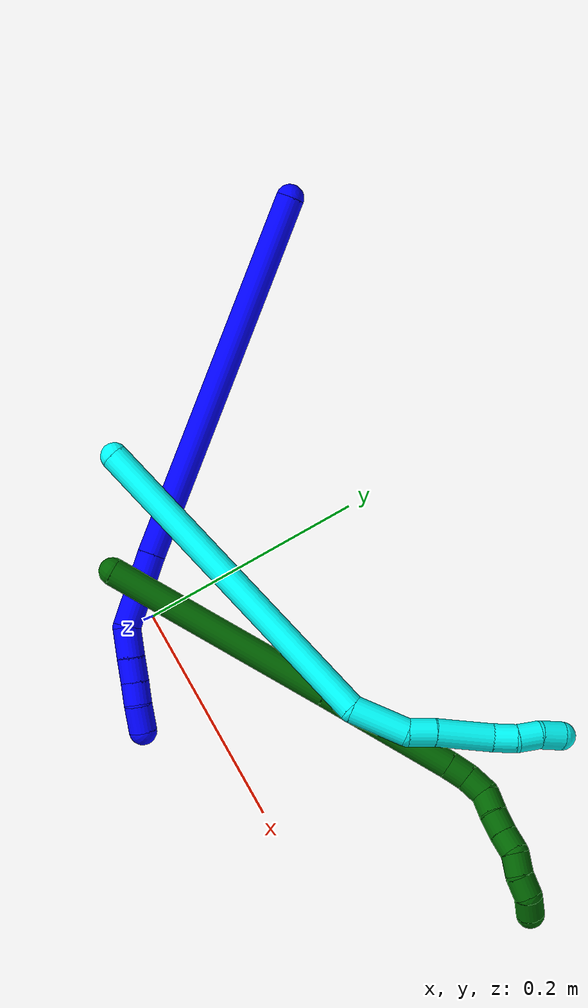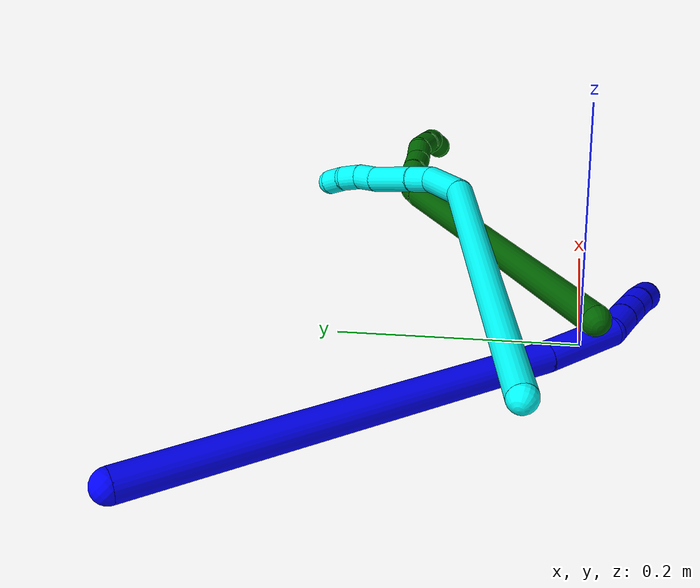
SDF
<sdf version="1.7">
 <world name="default">
  <model name="photoneo_s_sensor">
   <static>1</static>
   <pose>0 0 2 1.57079 1.57079 3.14159</pose>
   <link name="link">
    <inertial><mass>0.1</mass></inertial>
    <sensor name="sensor" type="depth">
     <update_rate>30</update_rate>
     <camera>
      <horizontal_fov>1.22</horizontal_fov>
      <image><width>1920</width><height>1200</height><format>B8G8R8</format></image>
      <clip><near>0.1</near><far>4</far></clip>
      <depth_camera><output>points</output></depth_camera>
     </camera>
     <plugin name="camera_plugin" filename="libgazebo_ros_depth_camera.so">
      <baseline>0.2</baseline>
      <alwaysOn>1</alwaysOn>
      <updateRate>0.0</updateRate>
      <cameraName>camera_ir</cameraName>
      <imageTopicName>/camera/color/image_raw</imageTopicName>
      <cameraInfoTopicName>/camera/color/camera_info</cameraInfoTopicName>
      <depthImageTopicName>/camera/depth/image_raw</depthImageTopicName>
      <depthImageCameraInfoTopicName>/camera/depth/camera_info</depthImageCameraInfoTopicName>
      <pointCloudTopicName>/camera/depth/points</pointCloudTopicName>
      <frameName>fr_optical</frameName>
      <pointCloudCutoff>0.1</pointCloudCutoff>
      <pointCloudCutoffMax>2.0</pointCloudCutoffMax>
      <distortionK1>0</distortionK1>
      <distortionK2>0</distortionK2>
      <distortionK3>0</distortionK3>
      <distortionT1>0</distortionT1>
      <distortionT2>0</distortionT2>
      <CxPrime>0</CxPrime>
      <Cx>0</Cx>
      <Cy>0</Cy>
      <focalLength>0</focalLength>
      <hackBaseline>0</hackBaseline>
     </plugin>
    </sensor>
   </link>
  </model>
  <model name="bin">
   <static>1</static>
   <link name="bottom">
    <collision name="collision-bottom">
     <pose>0 0 -0.01 0 -0 0</pose>
     <geometry><box><size>0.8 0.6 0.02</size></box></geometry>
     <surface>
      <friction><ode><mu>100</mu><mu2>100</mu2></ode></friction>
      <contact><collide_bitmask>65535</collide_bitmask></contact>
     </surface>
    </collision>
   </link>
   <link name="west_wall">
    <collision name="collision-west_wall">
     <pose>-0.41 0 0.1 0 -0 0</pose>
     <geometry><box><size>0.02 0.6 0.2</size></box></geometry>
     <surface>
      <friction><ode><mu>100</mu><mu2>100</mu2></ode></friction>
      <contact><collide_bitmask>65535</collide_bitmask></contact>
     </surface>
    </collision>
   </link>
   <link name="east_wall">
    <collision name="collision-east_wall">
     <pose>0.41 0 0.1 0 -0 0</pose>
     <geometry><box><size>0.02 0.6 0.2</size></box></geometry>
     <surface>
      <friction><ode><mu>100</mu><mu2>100</mu2></ode></friction>
      <contact><collide_bitmask>65535</collide_bitmask></contact>
     </surface>
    </collision>
   </link>
   <link name="south_wall">
    <collision name="collision-south_wall">
     <pose>0 -0.31 0.1 0 -0 0</pose>
     <geometry><box><size>0.8 0.02 0.2</size></box></geometry>
     <surface>
      <friction><ode><mu>100</mu><mu2>100</mu2></ode></friction>
      <contact><collide_bitmask>65535</collide_bitmask></contact>
     </surface>
    </collision>
   </link>
   <link name="north_wall">
    <collision name="collision-north_wall">
     <pose>0 0.31 0.1 0 -0 0</pose>
     <geometry><box><size>0.8 0.02 0.2</size></box></geometry>
     <surface>
      <friction><ode><mu>100</mu><mu2>100</mu2></ode></friction>
      <contact><collide_bitmask>65535</collide_bitmask></contact>
     </surface>
    </collision>
   </link>
  </model>
  <model name="1">
   <static>0</static>
   <link name="1">
    <collision name="collision-cylinder-e_1_1_4">
     <pose>0.114088 -0.093492 -0.082958 2.29657 0.739822 1.42338</pose>
     <geometry><cylinder><radius>0.0125</radius><length>0.33846</length></cylinder></geometry>
     <surface>
      <friction><ode><mu>1.16</mu><mu2>1.16</mu2><slip1>0</slip1><slip2>0</slip2></ode></friction>
      <contact><ode><kp>1e+06</kp><kd>1</kd><max_vel>0</max_vel><min_depth>0.001</min_depth></ode></contact>
     </surface>
    </collision>
    <visual name="visual-cylinder-e_1_1_4">
     <pose>0.114088 -0.093492 -0.082958 2.29657 0.739822 1.42338</pose>
     <geometry><cylinder><radius>0.0125</radius><length>0.33846</length></cylinder></geometry>
     <material><ambient>0 0 1 1</ambient></material>
    </visual>
    <collision name="collision-cylinder-e_2_4_5">
     <pose>0.252128 -0.206645 -0.180238 2.20036 0.777717 1.356</pose>
     <geometry><cylinder><radius>0.0125</radius><length>0.068276</length></cylinder></geometry>
     <surface>
      <friction><ode><mu>1.16</mu><mu2>1.16</mu2><slip1>0</slip1><slip2>0</slip2></ode></friction>
      <contact><ode><kp>1e+06</kp><kd>1</kd><max_vel>0</max_vel><min_depth>0.001</min_depth></ode></contact>
     </surface>
    </collision>
    <visual name="visual-cylinder-e_2_4_5">
     <pose>0.252128 -0.206645 -0.180238 2.20036 0.777717 1.356</pose>
     <geometry><cylinder><radius>0.0125</radius><length>0.068276</length></cylinder></geometry>
     <material><ambient>0 0 1 1</ambient></material>
    </visual>
    <collision name="collision-cylinder-e_3_5_6">
     <pose>0.288882 -0.230069 -0.196656 2.07895 1.24618 1.77052</pose>
     <geometry><cylinder><radius>0.0125</radius><length>0.027013</length></cylinder></geometry>
     <surface>
      <friction><ode><mu>1.16</mu><mu2>1.16</mu2><slip1>0</slip1><slip2>0</slip2></ode></friction>
      <contact><ode><kp>1e+06</kp><kd>1</kd><max_vel>0</max_vel><min_depth>0.001</min_depth></ode></contact>
     </surface>
    </collision>
    <visual name="visual-cylinder-e_3_5_6">
     <pose>0.288882 -0.230069 -0.196656 2.07895 1.24618 1.77052</pose>
     <geometry><cylinder><radius>0.0125</radius><length>0.027013</length></cylinder></geometry>
     <material><ambient>0 0 1 1</ambient></material>
    </visual>
    <collision name="collision-cylinder-e_4_6_7">
     <pose>0.312041 -0.2364 -0.200769 2.23661 1.26547 1.97078</pose>
     <geometry><cylinder><radius>0.0125</radius><length>0.021721</length></cylinder></geometry>
     <surface>
      <friction><ode><mu>1.16</mu><mu2>1.16</mu2><slip1>0</slip1><slip2>0</slip2></ode></friction>
      <contact><ode><kp>1e+06</kp><kd>1</kd><max_vel>0</max_vel><min_depth>0.001</min_depth></ode></contact>
     </surface>
    </collision>
    <visual name="visual-cylinder-e_4_6_7">
     <pose>0.312041 -0.2364 -0.200769 2.23661 1.26547 1.97078</pose>
     <geometry><cylinder><radius>0.0125</radius><length>0.021721</length></cylinder></geometry>
     <material><ambient>0 0 1 1</ambient></material>
    </visual>
    <collision name="collision-cylinder-e_5_7_8">
     <pose>0.331968 -0.24158 -0.204646 2.18963 1.24735 1.89814</pose>
     <geometry><cylinder><radius>0.0125</radius><length>0.020184</length></cylinder></geometry>
     <surface>
      <friction><ode><mu>1.16</mu><mu2>1.16</mu2><slip1>0</slip1><slip2>0</slip2></ode></friction>
      <contact><ode><kp>1e+06</kp><kd>1</kd><max_vel>0</max_vel><min_depth>0.001</min_depth></ode></contact>
     </surface>
    </collision>
    <visual name="visual-cylinder-e_5_7_8">
     <pose>0.331968 -0.24158 -0.204646 2.18963 1.24735 1.89814</pose>
     <geometry><cylinder><radius>0.0125</radius><length>0.020184</length></cylinder></geometry>
     <material><ambient>0 0 1 1</ambient></material>
    </visual>
    <collision name="collision-cylinder-e_6_8_2">
     <pose>0.353159 -0.245519 -0.209875 2.76654 1.2688 2.63686</pose>
     <geometry><cylinder><radius>0.0125</radius><length>0.024346</length></cylinder></geometry>
     <surface>
      <friction><ode><mu>1.16</mu><mu2>1.16</mu2><slip1>0</slip1><slip2>0</slip2></ode></friction>
      <contact><ode><kp>1e+06</kp><kd>1</kd><max_vel>0</max_vel><min_depth>0.001</min_depth></ode></contact>
     </surface>
    </collision>
    <visual name="visual-cylinder-e_6_8_2">
     <pose>0.353159 -0.245519 -0.209875 2.76654 1.2688 2.63686</pose>
     <geometry><cylinder><radius>0.0125</radius><length>0.024346</length></cylinder></geometry>
     <material><ambient>0 0 1 1</ambient></material>
    </visual>
    <collision name="collision-sphere-2">
     <pose>0.364781 -0.246846 -0.213244 0 -0 0</pose>
     <geometry><sphere><radius>0.0125</radius></sphere></geometry>
     <surface>
      <friction><ode><mu>1.16</mu><mu2>1.16</mu2><slip1>0</slip1><slip2>0</slip2></ode></friction>
      <contact><ode><kp>1e+06</kp><kd>1</kd><max_vel>0</max_vel><min_depth>0.001</min_depth></ode></contact>
     </surface>
    </collision>
    <visual name="visual-sphere-2">
     <pose>0.364781 -0.246846 -0.213244 0 -0 0</pose>
     <geometry><sphere><radius>0.0125</radius></sphere></geometry>
     <material><ambient>0 0 1 1</ambient></material>
    </visual>
    <collision name="collision-sphere-4">
     <pose>0.228175 -0.186984 -0.165916 0 -0 0</pose>
     <geometry><sphere><radius>0.0125</radius></sphere></geometry>
     <surface>
      <friction><ode><mu>1.16</mu><mu2>1.16</mu2><slip1>0</slip1><slip2>0</slip2></ode></friction>
      <contact><ode><kp>1e+06</kp><kd>1</kd><max_vel>0</max_vel><min_depth>0.001</min_depth></ode></contact>
     </surface>
    </collision>
    <visual name="visual-sphere-4">
     <pose>0.228175 -0.186984 -0.165916 0 -0 0</pose>
     <geometry><sphere><radius>0.0125</radius></sphere></geometry>
     <material><ambient>0 0 1 1</ambient></material>
    </visual>
    <collision name="collision-sphere-1">
     <geometry><sphere><radius>0.0125</radius></sphere></geometry>
     <surface>
      <friction><ode><mu>1.16</mu><mu2>1.16</mu2><slip1>0</slip1><slip2>0</slip2></ode></friction>
      <contact><ode><kp>1e+06</kp><kd>1</kd><max_vel>0</max_vel><min_depth>0.001</min_depth></ode></contact>
     </surface>
    </collision>
    <visual name="visual-sphere-1">
     <geometry><sphere><radius>0.0125</radius></sphere></geometry>
     <material><ambient>0 0 1 1</ambient></material>
    </visual>
    <collision name="collision-sphere-8">
     <pose>0.341537 -0.244193 -0.206507 0 -0 0</pose>
     <geometry><sphere><radius>0.0125</radius></sphere></geometry>
     <surface>
      <friction><ode><mu>1.16</mu><mu2>1.16</mu2><slip1>0</slip1><slip2>0</slip2></ode></friction>
      <contact><ode><kp>1e+06</kp><kd>1</kd><max_vel>0</max_vel><min_depth>0.001</min_depth></ode></contact>
     </surface>
    </collision>
    <visual name="visual-sphere-8">
     <pose>0.341537 -0.244193 -0.206507 0 -0 0</pose>
     <geometry><sphere><radius>0.0125</radius></sphere></geometry>
     <material><ambient>0 0 1 1</ambient></material>
    </visual>
    <collision name="collision-sphere-5">
     <pose>0.276082 -0.226306 -0.19456 0 -0 0</pose>
     <geometry><sphere><radius>0.0125</radius></sphere></geometry>
     <surface>
      <friction><ode><mu>1.16</mu><mu2>1.16</mu2><slip1>0</slip1><slip2>0</slip2></ode></friction>
      <contact><ode><kp>1e+06</kp><kd>1</kd><max_vel>0</max_vel><min_depth>0.001</min_depth></ode></contact>
     </surface>
    </collision>
    <visual name="visual-sphere-5">
     <pose>0.276082 -0.226306 -0.19456 0 -0 0</pose>
     <geometry><sphere><radius>0.0125</radius></sphere></geometry>
     <material><ambient>0 0 1 1</ambient></material>
    </visual>
    <collision name="collision-sphere-6">
     <pose>0.301683 -0.233833 -0.198752 0 -0 0</pose>
     <geometry><sphere><radius>0.0125</radius></sphere></geometry>
     <surface>
      <friction><ode><mu>1.16</mu><mu2>1.16</mu2><slip1>0</slip1><slip2>0</slip2></ode></friction>
      <contact><ode><kp>1e+06</kp><kd>1</kd><max_vel>0</max_vel><min_depth>0.001</min_depth></ode></contact>
     </surface>
    </collision>
    <visual name="visual-sphere-6">
     <pose>0.301683 -0.233833 -0.198752 0 -0 0</pose>
     <geometry><sphere><radius>0.0125</radius></sphere></geometry>
     <material><ambient>0 0 1 1</ambient></material>
    </visual>
    <collision name="collision-sphere-7">
     <pose>0.3224 -0.238968 -0.202785 0 -0 0</pose>
     <geometry><sphere><radius>0.0125</radius></sphere></geometry>
     <surface>
      <friction><ode><mu>1.16</mu><mu2>1.16</mu2><slip1>0</slip1><slip2>0</slip2></ode></friction>
      <contact><ode><kp>1e+06</kp><kd>1</kd><max_vel>0</max_vel><min_depth>0.001</min_depth></ode></contact>
     </surface>
    </collision>
    <visual name="visual-sphere-7">
     <pose>0.3224 -0.238968 -0.202785 0 -0 0</pose>
     <geometry><sphere><radius>0.0125</radius></sphere></geometry>
     <material><ambient>0 0 1 1</ambient></material>
    </visual>
    <inertial>
     <pose>0.171416 -0.135911 -0.118595 0 -0 0</pose>
     <mass>0.5</mass>
     <inertia>
      <ixx>0.002776</ixx>
      <ixy>0</ixy>
      <ixz>0</ixz>
      <iyy>0.003695</iyy>
      <iyz>0</iyz>
      <izz>-0.000421</izz>
     </inertia>
    </inertial>
   </link>
   <pose>-0.263694 0.287398 0.011499 -0.784513 0.064266 -0.052105</pose>
  </model>
  <model name="3">
   <static>0</static>
   <link name="3">
    <collision name="collision-cylinder-e_1_1_4">
     <pose>0.04212 0.051383 0.139013 -0.354053 0.276902 -0.049846</pose>
     <geometry><cylinder><radius>0.0125</radius><length>0.308149</length></cylinder></geometry>
     <surface>
      <friction><ode><mu>1.16</mu><mu2>1.16</mu2><slip1>0</slip1><slip2>0</slip2></ode></friction>
      <contact><ode><kp>1e+06</kp><kd>1</kd><max_vel>0</max_vel><min_depth>0.001</min_depth></ode></contact>
     </surface>
    </collision>
    <visual name="visual-cylinder-e_1_1_4">
     <pose>0.04212 0.051383 0.139013 -0.354053 0.276902 -0.049846</pose>
     <geometry><cylinder><radius>0.0125</radius><length>0.308149</length></cylinder></geometry>
     <material><ambient>0.003922 1 0.996078 1</ambient></material>
    </visual>
    <collision name="collision-cylinder-e_2_4_5">
     <pose>0.095476 0.119567 0.294439 -0.797081 0.446173 -0.190474</pose>
     <geometry><cylinder><radius>0.0125</radius><length>0.052073</length></cylinder></geometry>
     <surface>
      <friction><ode><mu>1.16</mu><mu2>1.16</mu2><slip1>0</slip1><slip2>0</slip2></ode></friction>
      <contact><ode><kp>1e+06</kp><kd>1</kd><max_vel>0</max_vel><min_depth>0.001</min_depth></ode></contact>
     </surface>
    </collision>
    <visual name="visual-cylinder-e_2_4_5">
     <pose>0.095476 0.119567 0.294439 -0.797081 0.446173 -0.190474</pose>
     <geometry><cylinder><radius>0.0125</radius><length>0.052073</length></cylinder></geometry>
     <material><ambient>0.003922 1 0.996078 1</ambient></material>
    </visual>
    <collision name="collision-cylinder-e_3_5_6">
     <pose>0.112523 0.146691 0.314008 -1.27408 0.493937 -0.368867</pose>
     <geometry><cylinder><radius>0.0125</radius><length>0.02452</length></cylinder></geometry>
     <surface>
      <friction><ode><mu>1.16</mu><mu2>1.16</mu2><slip1>0</slip1><slip2>0</slip2></ode></friction>
      <contact><ode><kp>1e+06</kp><kd>1</kd><max_vel>0</max_vel><min_depth>0.001</min_depth></ode></contact>
     </surface>
    </collision>
    <visual name="visual-cylinder-e_3_5_6">
     <pose>0.112523 0.146691 0.314008 -1.27408 0.493937 -0.368867</pose>
     <geometry><cylinder><radius>0.0125</radius><length>0.02452</length></cylinder></geometry>
     <material><ambient>0.003922 1 0.996078 1</ambient></material>
    </visual>
    <collision name="collision-cylinder-e_4_6_7">
     <pose>0.131991 0.177261 0.325444 -1.18259 0.558041 -0.380082</pose>
     <geometry><cylinder><radius>0.0125</radius><length>0.051574</length></cylinder></geometry>
     <surface>
      <friction><ode><mu>1.16</mu><mu2>1.16</mu2><slip1>0</slip1><slip2>0</slip2></ode></friction>
      <contact><ode><kp>1e+06</kp><kd>1</kd><max_vel>0</max_vel><min_depth>0.001</min_depth></ode></contact>
     </surface>
    </collision>
    <visual name="visual-cylinder-e_4_6_7">
     <pose>0.131991 0.177261 0.325444 -1.18259 0.558041 -0.380082</pose>
     <geometry><cylinder><radius>0.0125</radius><length>0.051574</length></cylinder></geometry>
     <material><ambient>0.003922 1 0.996078 1</ambient></material>
    </visual>
    <collision name="collision-cylinder-e_5_7_8">
     <pose>0.149909 0.206701 0.337307 -1.19912 0.407884 -0.280856</pose>
     <geometry><cylinder><radius>0.0125</radius><length>0.021496</length></cylinder></geometry>
     <surface>
      <friction><ode><mu>1.16</mu><mu2>1.16</mu2><slip1>0</slip1><slip2>0</slip2></ode></friction>
      <contact><ode><kp>1e+06</kp><kd>1</kd><max_vel>0</max_vel><min_depth>0.001</min_depth></ode></contact>
     </surface>
    </collision>
    <visual name="visual-cylinder-e_5_7_8">
     <pose>0.149909 0.206701 0.337307 -1.19912 0.407884 -0.280856</pose>
     <geometry><cylinder><radius>0.0125</radius><length>0.021496</length></cylinder></geometry>
     <material><ambient>0.003922 1 0.996078 1</ambient></material>
    </visual>
    <collision name="collision-cylinder-e_6_8_9">
     <pose>0.159177 0.224988 0.341814 -1.46964 0.500893 -0.454351</pose>
     <geometry><cylinder><radius>0.0125</radius><length>0.020843</length></cylinder></geometry>
     <surface>
      <friction><ode><mu>1.16</mu><mu2>1.16</mu2><slip1>0</slip1><slip2>0</slip2></ode></friction>
      <contact><ode><kp>1e+06</kp><kd>1</kd><max_vel>0</max_vel><min_depth>0.001</min_depth></ode></contact>
     </surface>
    </collision>
    <visual name="visual-cylinder-e_6_8_9">
     <pose>0.159177 0.224988 0.341814 -1.46964 0.500893 -0.454351</pose>
     <geometry><cylinder><radius>0.0125</radius><length>0.020843</length></cylinder></geometry>
     <material><ambient>0.003922 1 0.996078 1</ambient></material>
    </visual>
    <collision name="collision-cylinder-e_7_9_2">
     <pose>0.171126 0.241853 0.345041 -1.28249 0.708433 -0.538704</pose>
     <geometry><cylinder><radius>0.0125</radius><length>0.021346</length></cylinder></geometry>
     <surface>
      <friction><ode><mu>1.16</mu><mu2>1.16</mu2><slip1>0</slip1><slip2>0</slip2></ode></friction>
      <contact><ode><kp>1e+06</kp><kd>1</kd><max_vel>0</max_vel><min_depth>0.001</min_depth></ode></contact>
     </surface>
    </collision>
    <visual name="visual-cylinder-e_7_9_2">
     <pose>0.171126 0.241853 0.345041 -1.28249 0.708433 -0.538704</pose>
     <geometry><cylinder><radius>0.0125</radius><length>0.021346</length></cylinder></geometry>
     <material><ambient>0.003922 1 0.996078 1</ambient></material>
    </visual>
    <collision name="collision-sphere-2">
     <pose>0.17807 0.249623 0.347345 0 -0 0</pose>
     <geometry><sphere><radius>0.0125</radius></sphere></geometry>
     <surface>
      <friction><ode><mu>1.16</mu><mu2>1.16</mu2><slip1>0</slip1><slip2>0</slip2></ode></friction>
      <contact><ode><kp>1e+06</kp><kd>1</kd><max_vel>0</max_vel><min_depth>0.001</min_depth></ode></contact>
     </surface>
    </collision>
    <visual name="visual-sphere-2">
     <pose>0.17807 0.249623 0.347345 0 -0 0</pose>
     <geometry><sphere><radius>0.0125</radius></sphere></geometry>
     <material><ambient>0.003922 1 0.996078 1</ambient></material>
    </visual>
    <collision name="collision-sphere-9">
     <pose>0.164181 0.234083 0.342737 0 -0 0</pose>
     <geometry><sphere><radius>0.0125</radius></sphere></geometry>
     <surface>
      <friction><ode><mu>1.16</mu><mu2>1.16</mu2><slip1>0</slip1><slip2>0</slip2></ode></friction>
      <contact><ode><kp>1e+06</kp><kd>1</kd><max_vel>0</max_vel><min_depth>0.001</min_depth></ode></contact>
     </surface>
    </collision>
    <visual name="visual-sphere-9">
     <pose>0.164181 0.234083 0.342737 0 -0 0</pose>
     <geometry><sphere><radius>0.0125</radius></sphere></geometry>
     <material><ambient>0.003922 1 0.996078 1</ambient></material>
    </visual>
    <collision name="collision-sphere-4">
     <pose>0.084241 0.102766 0.278026 0 -0 0</pose>
     <geometry><sphere><radius>0.0125</radius></sphere></geometry>
     <surface>
      <friction><ode><mu>1.16</mu><mu2>1.16</mu2><slip1>0</slip1><slip2>0</slip2></ode></friction>
      <contact><ode><kp>1e+06</kp><kd>1</kd><max_vel>0</max_vel><min_depth>0.001</min_depth></ode></contact>
     </surface>
    </collision>
    <visual name="visual-sphere-4">
     <pose>0.084241 0.102766 0.278026 0 -0 0</pose>
     <geometry><sphere><radius>0.0125</radius></sphere></geometry>
     <material><ambient>0.003922 1 0.996078 1</ambient></material>
    </visual>
    <collision name="collision-sphere-1">
     <geometry><sphere><radius>0.0125</radius></sphere></geometry>
     <surface>
      <friction><ode><mu>1.16</mu><mu2>1.16</mu2><slip1>0</slip1><slip2>0</slip2></ode></friction>
      <contact><ode><kp>1e+06</kp><kd>1</kd><max_vel>0</max_vel><min_depth>0.001</min_depth></ode></contact>
     </surface>
    </collision>
    <visual name="visual-sphere-1">
     <geometry><sphere><radius>0.0125</radius></sphere></geometry>
     <material><ambient>0.003922 1 0.996078 1</ambient></material>
    </visual>
    <collision name="collision-sphere-8">
     <pose>0.154172 0.215893 0.34089 0 -0 0</pose>
     <geometry><sphere><radius>0.0125</radius></sphere></geometry>
     <surface>
      <friction><ode><mu>1.16</mu><mu2>1.16</mu2><slip1>0</slip1><slip2>0</slip2></ode></friction>
      <contact><ode><kp>1e+06</kp><kd>1</kd><max_vel>0</max_vel><min_depth>0.001</min_depth></ode></contact>
     </surface>
    </collision>
    <visual name="visual-sphere-8">
     <pose>0.154172 0.215893 0.34089 0 -0 0</pose>
     <geometry><sphere><radius>0.0125</radius></sphere></geometry>
     <material><ambient>0.003922 1 0.996078 1</ambient></material>
    </visual>
    <collision name="collision-sphere-5">
     <pose>0.106711 0.136368 0.310851 0 -0 0</pose>
     <geometry><sphere><radius>0.0125</radius></sphere></geometry>
     <surface>
      <friction><ode><mu>1.16</mu><mu2>1.16</mu2><slip1>0</slip1><slip2>0</slip2></ode></friction>
      <contact><ode><kp>1e+06</kp><kd>1</kd><max_vel>0</max_vel><min_depth>0.001</min_depth></ode></contact>
     </surface>
    </collision>
    <visual name="visual-sphere-5">
     <pose>0.106711 0.136368 0.310851 0 -0 0</pose>
     <geometry><sphere><radius>0.0125</radius></sphere></geometry>
     <material><ambient>0.003922 1 0.996078 1</ambient></material>
    </visual>
    <collision name="collision-sphere-6">
     <pose>0.118336 0.157014 0.317164 0 -0 0</pose>
     <geometry><sphere><radius>0.0125</radius></sphere></geometry>
     <surface>
      <friction><ode><mu>1.16</mu><mu2>1.16</mu2><slip1>0</slip1><slip2>0</slip2></ode></friction>
      <contact><ode><kp>1e+06</kp><kd>1</kd><max_vel>0</max_vel><min_depth>0.001</min_depth></ode></contact>
     </surface>
    </collision>
    <visual name="visual-sphere-6">
     <pose>0.118336 0.157014 0.317164 0 -0 0</pose>
     <geometry><sphere><radius>0.0125</radius></sphere></geometry>
     <material><ambient>0.003922 1 0.996078 1</ambient></material>
    </visual>
    <collision name="collision-sphere-7">
     <pose>0.145645 0.197508 0.333724 0 -0 0</pose>
     <geometry><sphere><radius>0.0125</radius></sphere></geometry>
     <surface>
      <friction><ode><mu>1.16</mu><mu2>1.16</mu2><slip1>0</slip1><slip2>0</slip2></ode></friction>
      <contact><ode><kp>1e+06</kp><kd>1</kd><max_vel>0</max_vel><min_depth>0.001</min_depth></ode></contact>
     </surface>
    </collision>
    <visual name="visual-sphere-7">
     <pose>0.145645 0.197508 0.333724 0 -0 0</pose>
     <geometry><sphere><radius>0.0125</radius></sphere></geometry>
     <material><ambient>0.003922 1 0.996078 1</ambient></material>
    </visual>
    <inertial>
     <pose>0.075421 0.098188 0.208786 0 -0 0</pose>
     <mass>0.5</mass>
     <inertia>
      <ixx>0.00227</ixx>
      <ixy>0</ixy>
      <ixz>0</ixz>
      <iyy>0.002221</iyy>
      <iyz>0</iyz>
      <izz>-0.001502</izz>
     </inertia>
    </inertial>
   </link>
   <pose>-0.139433 0.040398 0.024068 0.456976 1.11862 0.348157</pose>
  </model>
  <model name="6">
   <static>0</static>
   <link name="6">
    <collision name="collision-cylinder-e_1_1_4">
     <pose>0.02507 0.012012 0.103257 -0.115809 0.236648 -0.013782</pose>
     <geometry><cylinder><radius>0.0125</radius><length>0.213867</length></cylinder></geometry>
     <surface>
      <friction><ode><mu>1.16</mu><mu2>1.16</mu2><slip1>0</slip1><slip2>0</slip2></ode></friction>
      <contact><ode><kp>1e+06</kp><kd>1</kd><max_vel>0</max_vel><min_depth>0.001</min_depth></ode></contact>
     </surface>
    </collision>
    <visual name="visual-cylinder-e_1_1_4">
     <pose>0.02507 0.012012 0.103257 -0.115809 0.236648 -0.013782</pose>
     <geometry><cylinder><radius>0.0125</radius><length>0.213867</length></cylinder></geometry>
     <material><ambient>0 0.392157 0.003922 1</ambient></material>
    </visual>
    <collision name="collision-cylinder-e_2_4_5">
     <pose>0.066032 0.030551 0.266769 -0.107905 0.256442 -0.013925</pose>
     <geometry><cylinder><radius>0.0125</radius><length>0.125313</length></cylinder></geometry>
     <surface>
      <friction><ode><mu>1.16</mu><mu2>1.16</mu2><slip1>0</slip1><slip2>0</slip2></ode></friction>
      <contact><ode><kp>1e+06</kp><kd>1</kd><max_vel>0</max_vel><min_depth>0.001</min_depth></ode></contact>
     </surface>
    </collision>
    <visual name="visual-cylinder-e_2_4_5">
     <pose>0.066032 0.030551 0.266769 -0.107905 0.256442 -0.013925</pose>
     <geometry><cylinder><radius>0.0125</radius><length>0.125313</length></cylinder></geometry>
     <material><ambient>0 0.392157 0.003922 1</ambient></material>
    </visual>
    <collision name="collision-cylinder-e_3_5_6">
     <pose>0.084044 0.03761 0.336793 -0.054395 0.213307 -0.005825</pose>
     <geometry><cylinder><radius>0.0125</radius><length>0.020022</length></cylinder></geometry>
     <surface>
      <friction><ode><mu>1.16</mu><mu2>1.16</mu2><slip1>0</slip1><slip2>0</slip2></ode></friction>
      <contact><ode><kp>1e+06</kp><kd>1</kd><max_vel>0</max_vel><min_depth>0.001</min_depth></ode></contact>
     </surface>
    </collision>
    <visual name="visual-cylinder-e_3_5_6">
     <pose>0.084044 0.03761 0.336793 -0.054395 0.213307 -0.005825</pose>
     <geometry><cylinder><radius>0.0125</radius><length>0.020022</length></cylinder></geometry>
     <material><ambient>0 0.392157 0.003922 1</ambient></material>
    </visual>
    <collision name="collision-cylinder-e_4_6_7">
     <pose>0.086829 0.037117 0.356861 0.099168 0.064293 0.003192</pose>
     <geometry><cylinder><radius>0.0125</radius><length>0.020741</length></cylinder></geometry>
     <surface>
      <friction><ode><mu>1.16</mu><mu2>1.16</mu2><slip1>0</slip1><slip2>0</slip2></ode></friction>
      <contact><ode><kp>1e+06</kp><kd>1</kd><max_vel>0</max_vel><min_depth>0.001</min_depth></ode></contact>
     </surface>
    </collision>
    <visual name="visual-cylinder-e_4_6_7">
     <pose>0.086829 0.037117 0.356861 0.099168 0.064293 0.003192</pose>
     <geometry><cylinder><radius>0.0125</radius><length>0.020741</length></cylinder></geometry>
     <material><ambient>0 0.392157 0.003922 1</ambient></material>
    </visual>
    <collision name="collision-cylinder-e_5_7_8">
     <pose>0.085644 0.031315 0.375757 0.507146 -0.18611 -0.048361</pose>
     <geometry><cylinder><radius>0.0125</radius><length>0.020018</length></cylinder></geometry>
     <surface>
      <friction><ode><mu>1.16</mu><mu2>1.16</mu2><slip1>0</slip1><slip2>0</slip2></ode></friction>
      <contact><ode><kp>1e+06</kp><kd>1</kd><max_vel>0</max_vel><min_depth>0.001</min_depth></ode></contact>
     </surface>
    </collision>
    <visual name="visual-cylinder-e_5_7_8">
     <pose>0.085644 0.031315 0.375757 0.507146 -0.18611 -0.048361</pose>
     <geometry><cylinder><radius>0.0125</radius><length>0.020018</length></cylinder></geometry>
     <material><ambient>0 0.392157 0.003922 1</ambient></material>
    </visual>
    <collision name="collision-cylinder-e_6_8_9">
     <pose>0.083128 0.022182 0.39334 0.451448 -0.066401 -0.015253</pose>
     <geometry><cylinder><radius>0.0125</radius><length>0.020016</length></cylinder></geometry>
     <surface>
      <friction><ode><mu>1.16</mu><mu2>1.16</mu2><slip1>0</slip1><slip2>0</slip2></ode></friction>
      <contact><ode><kp>1e+06</kp><kd>1</kd><max_vel>0</max_vel><min_depth>0.001</min_depth></ode></contact>
     </surface>
    </collision>
    <visual name="visual-cylinder-e_6_8_9">
     <pose>0.083128 0.022182 0.39334 0.451448 -0.066401 -0.015253</pose>
     <geometry><cylinder><radius>0.0125</radius><length>0.020016</length></cylinder></geometry>
     <material><ambient>0 0.392157 0.003922 1</ambient></material>
    </visual>
    <collision name="collision-cylinder-e_7_9_10">
     <pose>0.080492 0.014391 0.411521 0.357391 -0.198179 -0.035909</pose>
     <geometry><cylinder><radius>0.0125</radius><length>0.020022</length></cylinder></geometry>
     <surface>
      <friction><ode><mu>1.16</mu><mu2>1.16</mu2><slip1>0</slip1><slip2>0</slip2></ode></friction>
      <contact><ode><kp>1e+06</kp><kd>1</kd><max_vel>0</max_vel><min_depth>0.001</min_depth></ode></contact>
     </surface>
    </collision>
    <visual name="visual-cylinder-e_7_9_10">
     <pose>0.080492 0.014391 0.411521 0.357391 -0.198179 -0.035909</pose>
     <geometry><cylinder><radius>0.0125</radius><length>0.020022</length></cylinder></geometry>
     <material><ambient>0 0.392157 0.003922 1</ambient></material>
    </visual>
    <collision name="collision-cylinder-e_8_10_11">
     <pose>0.079519 0.004275 0.428089 0.736289 0.099957 0.038584</pose>
     <geometry><cylinder><radius>0.0125</radius><length>0.020001</length></cylinder></geometry>
     <surface>
      <friction><ode><mu>1.16</mu><mu2>1.16</mu2><slip1>0</slip1><slip2>0</slip2></ode></friction>
      <contact><ode><kp>1e+06</kp><kd>1</kd><max_vel>0</max_vel><min_depth>0.001</min_depth></ode></contact>
     </surface>
    </collision>
    <visual name="visual-cylinder-e_8_10_11">
     <pose>0.079519 0.004275 0.428089 0.736289 0.099957 0.038584</pose>
     <geometry><cylinder><radius>0.0125</radius><length>0.020001</length></cylinder></geometry>
     <material><ambient>0 0.392157 0.003922 1</ambient></material>
    </visual>
    <collision name="collision-cylinder-e_9_11_12">
     <pose>0.083424 -0.007547 0.443533 0.567042 0.294911 0.086503</pose>
     <geometry><cylinder><radius>0.0125</radius><length>0.02</length></cylinder></geometry>
     <surface>
      <friction><ode><mu>1.16</mu><mu2>1.16</mu2><slip1>0</slip1><slip2>0</slip2></ode></friction>
      <contact><ode><kp>1e+06</kp><kd>1</kd><max_vel>0</max_vel><min_depth>0.001</min_depth></ode></contact>
     </surface>
    </collision>
    <visual name="visual-cylinder-e_9_11_12">
     <pose>0.083424 -0.007547 0.443533 0.567042 0.294911 0.086503</pose>
     <geometry><cylinder><radius>0.0125</radius><length>0.02</length></cylinder></geometry>
     <material><ambient>0 0.392157 0.003922 1</ambient></material>
    </visual>
    <collision name="collision-cylinder-e_10_12_2">
     <pose>0.092771 -0.018871 0.456105 0.941672 0.699792 0.367306</pose>
     <geometry><cylinder><radius>0.0125</radius><length>0.02</length></cylinder></geometry>
     <surface>
      <friction><ode><mu>1.16</mu><mu2>1.16</mu2><slip1>0</slip1><slip2>0</slip2></ode></friction>
      <contact><ode><kp>1e+06</kp><kd>1</kd><max_vel>0</max_vel><min_depth>0.001</min_depth></ode></contact>
     </surface>
    </collision>
    <visual name="visual-cylinder-e_10_12_2">
     <pose>0.092771 -0.018871 0.456105 0.941672 0.699792 0.367306</pose>
     <geometry><cylinder><radius>0.0125</radius><length>0.02</length></cylinder></geometry>
     <material><ambient>0 0.392157 0.003922 1</ambient></material>
    </visual>
    <collision name="collision-sphere-2">
     <pose>0.099212 -0.025057 0.460607 0 -0 0</pose>
     <geometry><sphere><radius>0.0125</radius></sphere></geometry>
     <surface>
      <friction><ode><mu>1.16</mu><mu2>1.16</mu2><slip1>0</slip1><slip2>0</slip2></ode></friction>
      <contact><ode><kp>1e+06</kp><kd>1</kd><max_vel>0</max_vel><min_depth>0.001</min_depth></ode></contact>
     </surface>
    </collision>
    <visual name="visual-sphere-2">
     <pose>0.099212 -0.025057 0.460607 0 -0 0</pose>
     <geometry><sphere><radius>0.0125</radius></sphere></geometry>
     <material><ambient>0 0.392157 0.003922 1</ambient></material>
    </visual>
    <collision name="collision-sphere-12">
     <pose>0.086331 -0.012686 0.451604 0 -0 0</pose>
     <geometry><sphere><radius>0.0125</radius></sphere></geometry>
     <surface>
      <friction><ode><mu>1.16</mu><mu2>1.16</mu2><slip1>0</slip1><slip2>0</slip2></ode></friction>
      <contact><ode><kp>1e+06</kp><kd>1</kd><max_vel>0</max_vel><min_depth>0.001</min_depth></ode></contact>
     </surface>
    </collision>
    <visual name="visual-sphere-12">
     <pose>0.086331 -0.012686 0.451604 0 -0 0</pose>
     <geometry><sphere><radius>0.0125</radius></sphere></geometry>
     <material><ambient>0 0.392157 0.003922 1</ambient></material>
    </visual>
    <collision name="collision-sphere-11">
     <pose>0.080517 -0.002407 0.435462 0 -0 0</pose>
     <geometry><sphere><radius>0.0125</radius></sphere></geometry>
     <surface>
      <friction><ode><mu>1.16</mu><mu2>1.16</mu2><slip1>0</slip1><slip2>0</slip2></ode></friction>
      <contact><ode><kp>1e+06</kp><kd>1</kd><max_vel>0</max_vel><min_depth>0.001</min_depth></ode></contact>
     </surface>
    </collision>
    <visual name="visual-sphere-11">
     <pose>0.080517 -0.002407 0.435462 0 -0 0</pose>
     <geometry><sphere><radius>0.0125</radius></sphere></geometry>
     <material><ambient>0 0.392157 0.003922 1</ambient></material>
    </visual>
    <collision name="collision-sphere-10">
     <pose>0.078521 0.010958 0.420716 0 -0 0</pose>
     <geometry><sphere><radius>0.0125</radius></sphere></geometry>
     <surface>
      <friction><ode><mu>1.16</mu><mu2>1.16</mu2><slip1>0</slip1><slip2>0</slip2></ode></friction>
      <contact><ode><kp>1e+06</kp><kd>1</kd><max_vel>0</max_vel><min_depth>0.001</min_depth></ode></contact>
     </surface>
    </collision>
    <visual name="visual-sphere-10">
     <pose>0.078521 0.010958 0.420716 0 -0 0</pose>
     <geometry><sphere><radius>0.0125</radius></sphere></geometry>
     <material><ambient>0 0.392157 0.003922 1</ambient></material>
    </visual>
    <collision name="collision-sphere-9">
     <pose>0.082464 0.017825 0.402326 0 -0 0</pose>
     <geometry><sphere><radius>0.0125</radius></sphere></geometry>
     <surface>
      <friction><ode><mu>1.16</mu><mu2>1.16</mu2><slip1>0</slip1><slip2>0</slip2></ode></friction>
      <contact><ode><kp>1e+06</kp><kd>1</kd><max_vel>0</max_vel><min_depth>0.001</min_depth></ode></contact>
     </surface>
    </collision>
    <visual name="visual-sphere-9">
     <pose>0.082464 0.017825 0.402326 0 -0 0</pose>
     <geometry><sphere><radius>0.0125</radius></sphere></geometry>
     <material><ambient>0 0.392157 0.003922 1</ambient></material>
    </visual>
    <collision name="collision-sphere-4">
     <pose>0.05014 0.024024 0.206514 0 -0 0</pose>
     <geometry><sphere><radius>0.0125</radius></sphere></geometry>
     <surface>
      <friction><ode><mu>1.16</mu><mu2>1.16</mu2><slip1>0</slip1><slip2>0</slip2></ode></friction>
      <contact><ode><kp>1e+06</kp><kd>1</kd><max_vel>0</max_vel><min_depth>0.001</min_depth></ode></contact>
     </surface>
    </collision>
    <visual name="visual-sphere-4">
     <pose>0.05014 0.024024 0.206514 0 -0 0</pose>
     <geometry><sphere><radius>0.0125</radius></sphere></geometry>
     <material><ambient>0 0.392157 0.003922 1</ambient></material>
    </visual>
    <collision name="collision-sphere-1">
     <geometry><sphere><radius>0.0125</radius></sphere></geometry>
     <surface>
      <friction><ode><mu>1.16</mu><mu2>1.16</mu2><slip1>0</slip1><slip2>0</slip2></ode></friction>
      <contact><ode><kp>1e+06</kp><kd>1</kd><max_vel>0</max_vel><min_depth>0.001</min_depth></ode></contact>
     </surface>
    </collision>
    <visual name="visual-sphere-1">
     <geometry><sphere><radius>0.0125</radius></sphere></geometry>
     <material><ambient>0 0.392157 0.003922 1</ambient></material>
    </visual>
    <collision name="collision-sphere-8">
     <pose>0.083792 0.026538 0.384355 0 -0 0</pose>
     <geometry><sphere><radius>0.0125</radius></sphere></geometry>
     <surface>
      <friction><ode><mu>1.16</mu><mu2>1.16</mu2><slip1>0</slip1><slip2>0</slip2></ode></friction>
      <contact><ode><kp>1e+06</kp><kd>1</kd><max_vel>0</max_vel><min_depth>0.001</min_depth></ode></contact>
     </surface>
    </collision>
    <visual name="visual-sphere-8">
     <pose>0.083792 0.026538 0.384355 0 -0 0</pose>
     <geometry><sphere><radius>0.0125</radius></sphere></geometry>
     <material><ambient>0 0.392157 0.003922 1</ambient></material>
    </visual>
    <collision name="collision-sphere-5">
     <pose>0.081925 0.037078 0.327023 0 -0 0</pose>
     <geometry><sphere><radius>0.0125</radius></sphere></geometry>
     <surface>
      <friction><ode><mu>1.16</mu><mu2>1.16</mu2><slip1>0</slip1><slip2>0</slip2></ode></friction>
      <contact><ode><kp>1e+06</kp><kd>1</kd><max_vel>0</max_vel><min_depth>0.001</min_depth></ode></contact>
     </surface>
    </collision>
    <visual name="visual-sphere-5">
     <pose>0.081925 0.037078 0.327023 0 -0 0</pose>
     <geometry><sphere><radius>0.0125</radius></sphere></geometry>
     <material><ambient>0 0.392157 0.003922 1</ambient></material>
    </visual>
    <collision name="collision-sphere-6">
     <pose>0.086163 0.038142 0.346563 0 -0 0</pose>
     <geometry><sphere><radius>0.0125</radius></sphere></geometry>
     <surface>
      <friction><ode><mu>1.16</mu><mu2>1.16</mu2><slip1>0</slip1><slip2>0</slip2></ode></friction>
      <contact><ode><kp>1e+06</kp><kd>1</kd><max_vel>0</max_vel><min_depth>0.001</min_depth></ode></contact>
     </surface>
    </collision>
    <visual name="visual-sphere-6">
     <pose>0.086163 0.038142 0.346563 0 -0 0</pose>
     <geometry><sphere><radius>0.0125</radius></sphere></geometry>
     <material><ambient>0 0.392157 0.003922 1</ambient></material>
    </visual>
    <collision name="collision-sphere-7">
     <pose>0.087496 0.036092 0.367159 0 -0 0</pose>
     <geometry><sphere><radius>0.0125</radius></sphere></geometry>
     <surface>
      <friction><ode><mu>1.16</mu><mu2>1.16</mu2><slip1>0</slip1><slip2>0</slip2></ode></friction>
      <contact><ode><kp>1e+06</kp><kd>1</kd><max_vel>0</max_vel><min_depth>0.001</min_depth></ode></contact>
     </surface>
    </collision>
    <visual name="visual-sphere-7">
     <pose>0.087496 0.036092 0.367159 0 -0 0</pose>
     <geometry><sphere><radius>0.0125</radius></sphere></geometry>
     <material><ambient>0 0.392157 0.003922 1</ambient></material>
    </visual>
    <inertial>
     <pose>0.054449 0.017673 0.239695 0 -0 0</pose>
     <mass>0.5</mass>
     <inertia>
      <ixx>0.00097</ixx>
      <ixy>0</ixy>
      <ixz>0</ixz>
      <iyy>0.000982</iyy>
      <iyz>0</iyz>
      <izz>-0.000307</izz>
     </inertia>
    </inertial>
   </link>
   <pose>-0.05114 -0.009359 0.045987 0.15809 1.32774 0.581356</pose>
  </model>
 </world>
</sdf>
